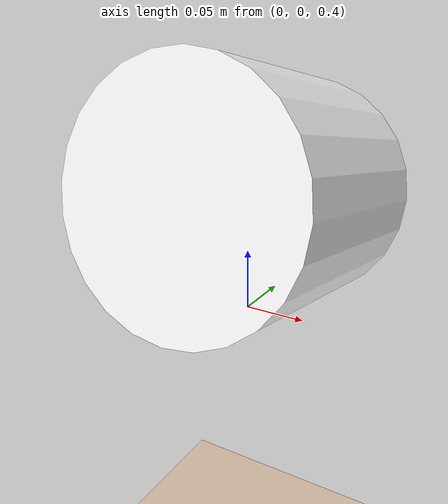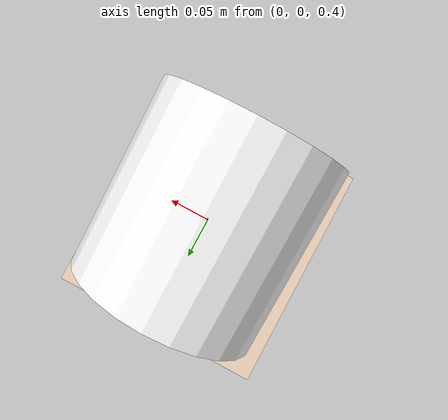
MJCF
<?xml version="1.0"?>
<mujoco model="robot">
  <worldbody>
    <geom name="table_top" type="box" pos="0.0 0.0 0.0" size="0.55 1.1 0.05" rgba="0.9 0.8 0.7 1"/>
    <body>
      <joint type="free"/>
      <geom name="object" type="cylinder" pos="0.0 0.0 0.5" euler="80 0 0" size="0.1 0.1" rgba="1.0 1.0 1.0 1.0"/>
    </body>
  </worldbody>
</mujoco>
